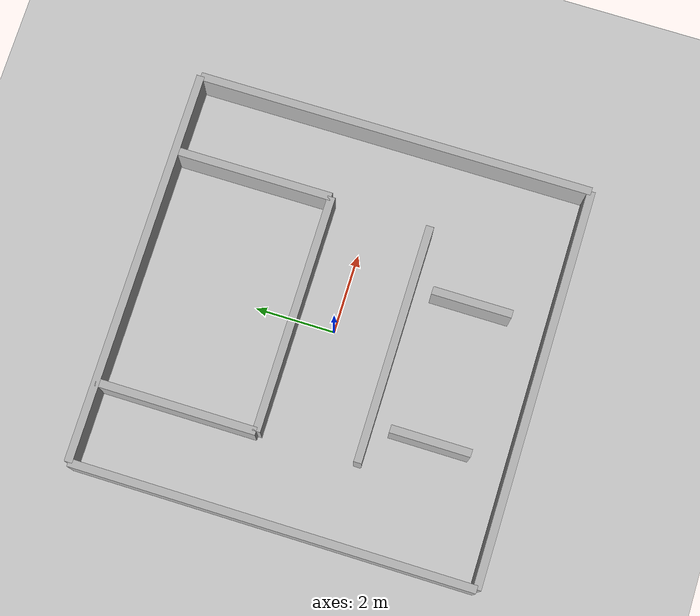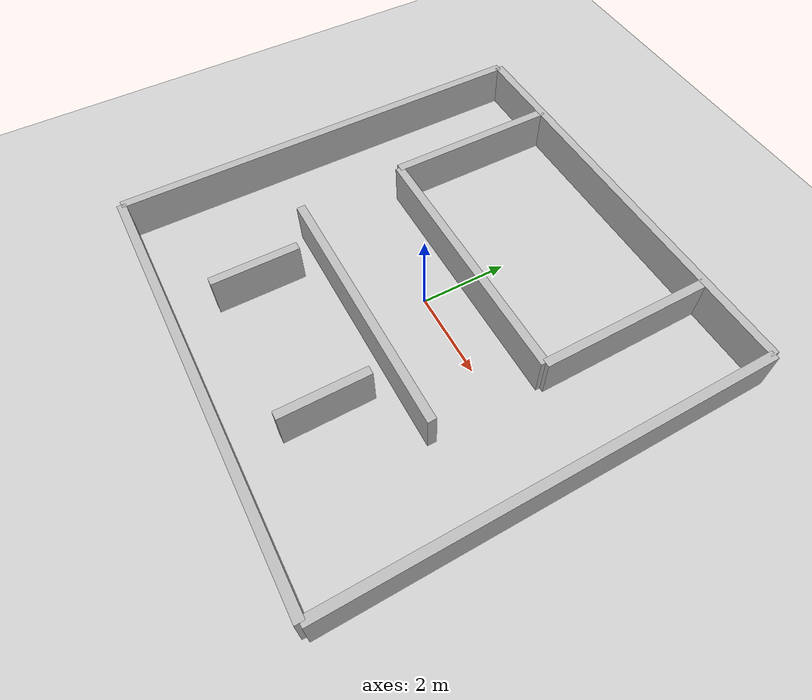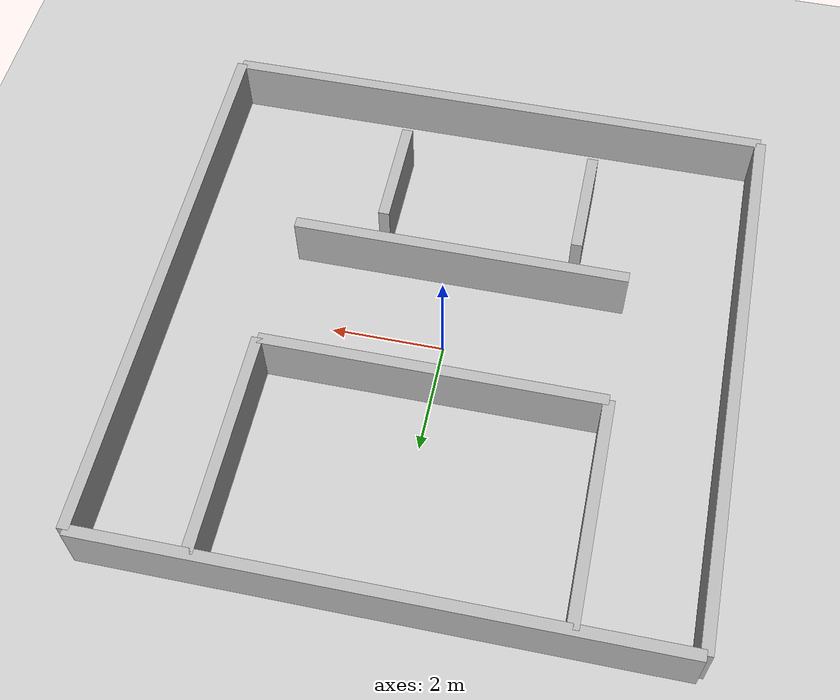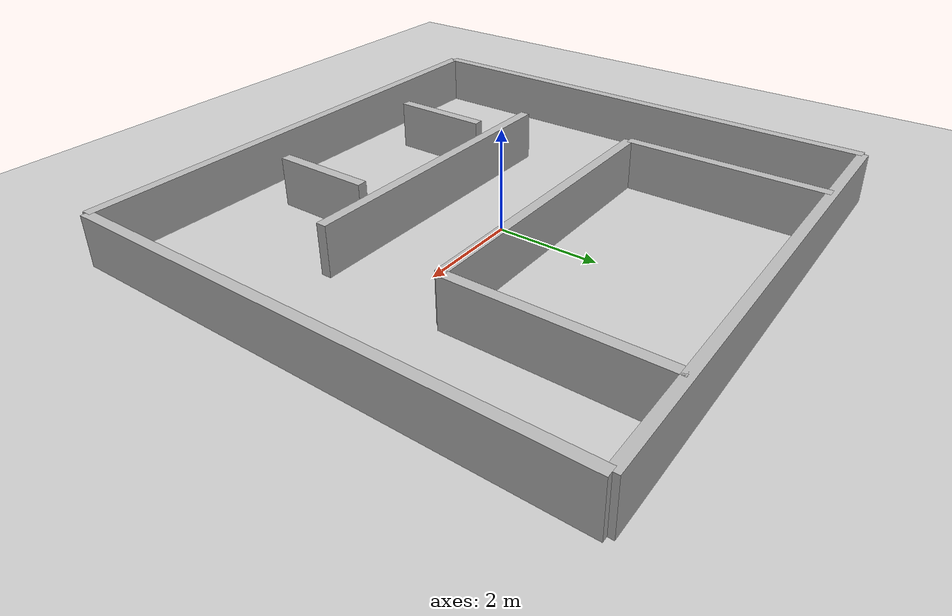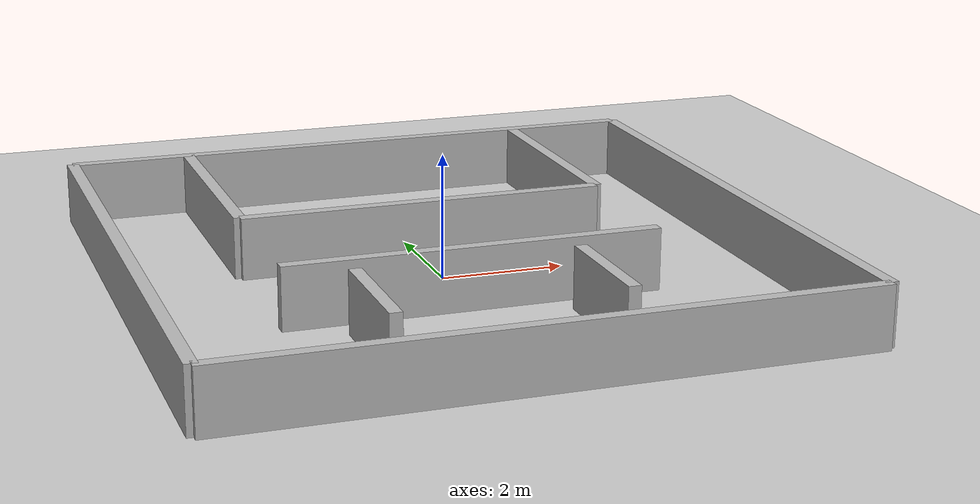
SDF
<?xml version="1.0"?>
<sdf version="1.6">
  <world name="swarm_maze_world">

    <include>
      <uri>model://sun</uri>
    </include>
    <include>
      <uri>model://ground_plane</uri>
    </include>

    <!-- Perimeter walls -->
    <model name="wall_1">
      <static>true</static>
      <pose>5 0 0.5 0 0 0</pose>
      <link name="link">
        <collision name="collision">
          <geometry>
            <box><size>0.2 10 1</size></box>
          </geometry>
        </collision>
        <visual name="visual">
          <geometry>
            <box><size>0.2 10 1</size></box>
          </geometry>
        </visual>
      </link>
    </model>
    <model name="wall_2">
      <static>true</static>
      <pose>-5 0 0.5 0 0 0</pose>
      <link name="link">
        <collision name="collision">
          <geometry>
            <box><size>0.2 10 1</size></box>
          </geometry>
        </collision>
        <visual name="visual">
          <geometry>
            <box><size>0.2 10 1</size></box>
          </geometry>
        </visual>
      </link>
    </model>
    <model name="wall_3">
      <static>true</static>
      <pose>0 5 0.5 0 0 0</pose>
      <link name="link">
        <collision name="collision">
          <geometry>
            <box><size>10 0.2 1</size></box>
          </geometry>
        </collision>
        <visual name="visual">
          <geometry>
            <box><size>10 0.2 1</size></box>
          </geometry>
        </visual>
      </link>
    </model>
    <model name="wall_4">
      <static>true</static>
      <pose>0 -5 0.5 0 0 0</pose>
      <link name="link">
        <collision name="collision">
          <geometry>
            <box><size>10 0.2 1</size></box>
          </geometry>
        </collision>
        <visual name="visual">
          <geometry>
            <box><size>10 0.2 1</size></box>
          </geometry>
        </visual>
      </link>
    </model>

    <!-- Maze Vertical Walls -->
    <model name="maze_wall_1">
      <static>true</static>
      <pose>-3 3 0.5 0 0 0</pose>
      <link name="link">
        <collision name="collision">
          <geometry>
            <box><size>0.2 4 1</size></box>
          </geometry>
        </collision>
        <visual name="visual">
          <geometry>
            <box><size>0.2 4 1</size></box>
          </geometry>
        </visual>
      </link>
    </model>
    <model name="maze_wall_2">
      <static>true</static>
      <pose>3 3 0.5 0 0 0</pose>
      <link name="link">
        <collision name="collision">
          <geometry>
            <box><size>0.2 4 1</size></box>
          </geometry>
        </collision>
        <visual name="visual">
          <geometry>
            <box><size>0.2 4 1</size></box>
          </geometry>
        </visual>
      </link>
    </model>
    <model name="maze_wall_3">
      <static>true</static>
      <pose>0 1 0.5 0 0 0</pose>
      <link name="link">
        <collision name="collision">
          <geometry>
            <box><size>6 0.2 1</size></box>
          </geometry>
        </collision>
        <visual name="visual">
          <geometry>
            <box><size>6 0.2 1</size></box>
          </geometry>
        </visual>
      </link>
    </model>
    <model name="maze_wall_4">
      <static>true</static>
      <pose>0 -1.5 0.5 0 0 0</pose>
      <link name="link">
        <collision name="collision">
          <geometry>
            <box><size>6 0.2 1</size></box>
          </geometry>
        </collision>
        <visual name="visual">
          <geometry>
            <box><size>6 0.2 1</size></box>
          </geometry>
        </visual>
      </link>
    </model>
    <model name="maze_wall_5">
      <static>true</static>
      <pose>1.5 -3 0.5 0 0 0</pose>
      <link name="link">
        <collision name="collision">
          <geometry>
            <box><size>0.2 2 1</size></box>
          </geometry>
        </collision>
        <visual name="visual">
          <geometry>
            <box><size>0.2 2 1</size></box>
          </geometry>
        </visual>
      </link>
    </model>
    <model name="maze_wall_6">
      <static>true</static>
      <pose>-2 -3 0.5 0 0 0</pose>
      <link name="link">
        <collision name="collision">
          <geometry>
            <box><size>0.2 2 1</size></box>
          </geometry>
        </collision>
        <visual name="visual">
          <geometry>
            <box><size>0.2 2 1</size></box>
          </geometry>
        </visual>
      </link>
    </model>

    <physics type="ode">
      <real_time_update_rate>1000</real_time_update_rate>
      <max_step_size>0.001</max_step_size>
    </physics>

  </world>
</sdf>
